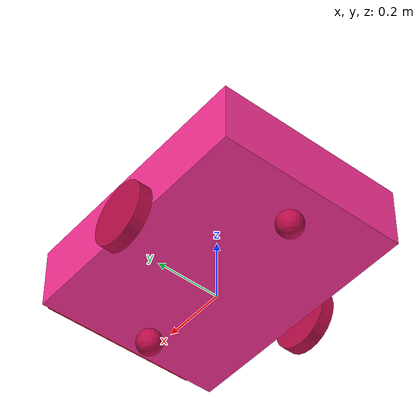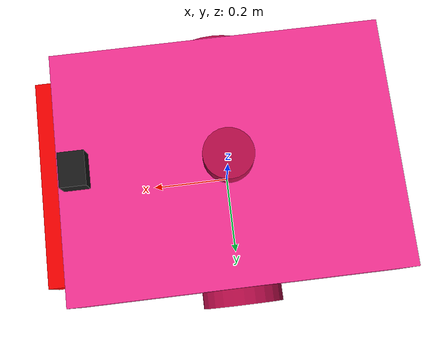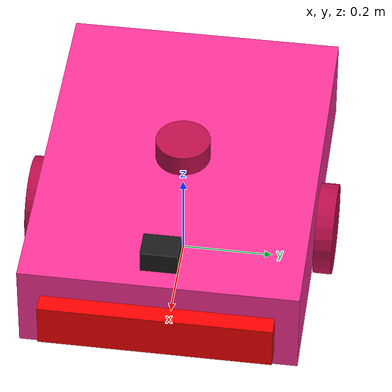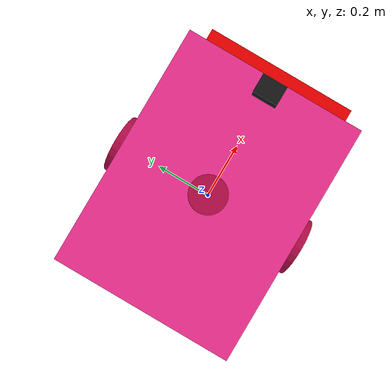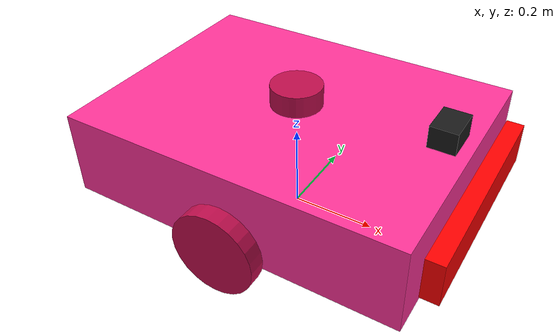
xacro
<?xml version="1.0"?>
<robot xmlns:xacro="http://www.ros.org/wiki/xacro" name="mobile_robot">

  <!-- IMU sensor definition -->
  <xacro:include filename="$(find robot_description)/urdf/imu.xacro"/>

  <!-- Camera sensor definition -->
  <xacro:include filename="$(find robot_description)/urdf/camera.xacro"/>

  <!-- Contact sensor definition -->
  <xacro:include filename="$(find robot_description)/urdf/contact_sensor.xacro"/>
  <xacro:include filename="$(find robot_description)/urdf/lidar.xacro"/>

  <!-- ==================== MATERIALS ==================== -->

  <material name="pink">
    <color rgba="1.0 0.2 0.6 1.0"/>
  </material>

  <material name="dark_pink">
    <color rgba="0.75 0.05 0.3 1.0"/>
  </material>

  <!-- ==================== BASE FOOTPRINT ==================== -->

  <link name="base_footprint"/>

  <!-- ==================== MAIN BODY ==================== -->

  <link name="base_link">

    <visual>
      <origin xyz="0 0 0" rpy="0 0 0"/>
      <geometry>
        <box size="0.80 0.60 0.20"/>
      </geometry>
      <material name="pink"/>
    </visual>

    <collision>
      <origin xyz="0 0 0" rpy="0 0 0"/>
      <geometry>
        <box size="0.80 0.60 0.20"/>
      </geometry>
    </collision>

    <inertial>
      <origin xyz="0 0 0" rpy="0 0 0"/>
      <mass value="5.0"/>
      <inertia
        ixx="0.1667"
        ixy="0.0"
        ixz="0.0"
        iyy="0.2833"
        iyz="0.0"
        izz="0.4167"/>
    </inertial>

  </link>

  <joint name="base_fixed_joint" type="fixed">
    <parent link="base_footprint"/>
    <child link="base_link"/>
    <origin xyz="0 0 0.18" rpy="0 0 0"/>
  </joint>

  <!-- ==================== LEFT WHEEL ==================== -->

  <link name="left_wheel_link">

    <visual>
      <origin xyz="0 0 0" rpy="1.5707963 0 0"/>
      <geometry>
        <cylinder radius="0.10" length="0.04"/>
      </geometry>
      <material name="dark_pink"/>
    </visual>

    <collision>
      <origin xyz="0 0 0" rpy="1.5707963 0 0"/>
      <geometry>
        <cylinder radius="0.10" length="0.04"/>
      </geometry>
    </collision>

    <inertial>
      <origin xyz="0 0 0" rpy="0 0 0"/>
      <mass value="0.3"/>
      <inertia
        ixx="0.0005"
        ixy="0.0"
        ixz="0.0"
        iyy="0.00096"
        iyz="0.0"
        izz="0.0005"/>
    </inertial>

  </link>

  <joint name="left_wheel_joint" type="continuous">
    <parent link="base_footprint"/>
    <child link="left_wheel_link"/>
    <origin xyz="0 0.32 0.10" rpy="0 0 0"/>
    <axis xyz="0 1 0"/>
  </joint>

  <!-- ==================== RIGHT WHEEL ==================== -->

  <link name="right_wheel_link">

    <visual>
      <origin xyz="0 0 0" rpy="1.5707963 0 0"/>
      <geometry>
        <cylinder radius="0.10" length="0.04"/>
      </geometry>
      <material name="dark_pink"/>
    </visual>

    <collision>
      <origin xyz="0 0 0" rpy="1.5707963 0 0"/>
      <geometry>
        <cylinder radius="0.10" length="0.04"/>
      </geometry>
    </collision>

    <inertial>
      <origin xyz="0 0 0" rpy="0 0 0"/>
      <mass value="0.3"/>
      <inertia
        ixx="0.0005"
        ixy="0.0"
        ixz="0.0"
        iyy="0.00096"
        iyz="0.0"
        izz="0.0005"/>
    </inertial>

  </link>

  <joint name="right_wheel_joint" type="continuous">
    <parent link="base_footprint"/>
    <child link="right_wheel_link"/>
    <origin xyz="0 -0.32 0.10" rpy="0 0 0"/>
    <axis xyz="0 1 0"/>
  </joint>

  <!-- ==================== REAR CASTER ==================== -->

  <link name="caster_link">

    <visual>
      <origin xyz="0 0 0" rpy="0 0 0"/>
      <geometry>
        <sphere radius="0.04"/>
      </geometry>
      <material name="dark_pink"/>
    </visual>

    <collision>
      <origin xyz="0 0 0" rpy="0 0 0"/>
      <geometry>
        <sphere radius="0.04"/>
      </geometry>
    </collision>

    <inertial>
      <origin xyz="0 0 0" rpy="0 0 0"/>
      <mass value="0.05"/>
      <inertia
        ixx="0.000018"
        ixy="0.0"
        ixz="0.0"
        iyy="0.000018"
        iyz="0.0"
        izz="0.000018"/>
    </inertial>

  </link>

  <joint name="caster_fixed_joint" type="fixed">
    <parent link="base_footprint"/>
    <child link="caster_link"/>
    <origin xyz="-0.30 0 0.04" rpy="0 0 0"/>
  </joint>

  <!-- ==================== FRONT CASTER ==================== -->

  <link name="front_caster_link">

    <visual>
      <origin xyz="0 0 0" rpy="0 0 0"/>
      <geometry>
        <sphere radius="0.04"/>
      </geometry>
      <material name="dark_pink"/>
    </visual>

    <collision>
      <origin xyz="0 0 0" rpy="0 0 0"/>
      <geometry>
        <sphere radius="0.04"/>
      </geometry>
    </collision>

    <inertial>
      <origin xyz="0 0 0" rpy="0 0 0"/>
      <mass value="0.05"/>
      <inertia
        ixx="0.000018"
        ixy="0.0"
        ixz="0.0"
        iyy="0.000018"
        iyz="0.0"
        izz="0.000018"/>
    </inertial>

  </link>

  <joint name="front_caster_fixed_joint" type="fixed">
    <parent link="base_footprint"/>
    <child link="front_caster_link"/>
    <origin xyz="0.30 0 0.04" rpy="0 0 0"/>
  </joint>

  <!-- 360 degree Gazebo LiDAR; scan frame is lidar_link. -->
  <xacro:lidar_sensor parent="base_link" name="lidar" topic="/scan"
                       x="0.0" y="0.0" z="0.12"/>

  <!-- ==================== GAZEBO MATERIALS ==================== -->

  <gazebo reference="base_link">
    <material>Gazebo/Pink</material>
  </gazebo>

  <gazebo reference="left_wheel_link">
    <material>Gazebo/DarkPink</material>
  </gazebo>

  <gazebo reference="right_wheel_link">
    <material>Gazebo/DarkPink</material>
  </gazebo>

  <gazebo reference="caster_link">
    <material>Gazebo/DarkPink</material>
  </gazebo>

  <gazebo reference="front_caster_link">
    <material>Gazebo/DarkPink</material>
  </gazebo>

  <!-- ==================== DIFFERENTIAL DRIVE ==================== -->

  <gazebo>
    <plugin
      filename="gz-sim-diff-drive-system"
      name="gz::sim::systems::DiffDrive">

      <left_joint>left_wheel_joint</left_joint>
      <right_joint>right_wheel_joint</right_joint>

      <wheel_separation>0.64</wheel_separation>
      <wheel_radius>0.10</wheel_radius>

      <topic>/cmd_vel</topic>
      <odom_topic>/odom</odom_topic>
      <odom_publish_frequency>20</odom_publish_frequency>
      <frame_id>odom</frame_id>
      <child_frame_id>base_footprint</child_frame_id>

      <max_linear_velocity>0.5</max_linear_velocity>
      <max_angular_velocity>1.0</max_angular_velocity>

    </plugin>
  </gazebo>

</robot>

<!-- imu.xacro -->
<robot xmlns:xacro="http://www.ros.org/wiki/xacro">

  <link name="imu_link">
    <visual>
      <geometry>
        <box size="0.03 0.03 0.03"/>
      </geometry>
      <material name="imu_gray">
        <color rgba="0.6 0.6 0.6 1"/>
      </material>
    </visual>
    <inertial>
      <mass value="0.01"/>
      <inertia ixx="0.00001" ixy="0" ixz="0"
               iyy="0.00001" iyz="0" izz="0.00001"/>
    </inertial>
  </link>

  <joint name="imu_fixed_joint" type="fixed">
    <parent link="base_link"/>
    <child link="imu_link"/>
    <origin xyz="0 0 0.06" rpy="0 0 0"/>
  </joint>

  <gazebo reference="imu_link">
    <sensor name="imu_sensor" type="imu">
      <always_on>true</always_on>
      <update_rate>50</update_rate>
      <visualize>true</visualize>
      <topic>/imu/data</topic>
      <gz_frame_id>imu_link</gz_frame_id>
    </sensor>
  </gazebo>

</robot>

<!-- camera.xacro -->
<robot xmlns:xacro="http://www.ros.org/wiki/xacro">

    <!-- CAMERA LINK -->
    <link name="camera_link">

        <visual>
            <geometry>
                <box size="0.06 0.08 0.05"/>
            </geometry>
            <material name="camera_black">
                <color rgba="0.1 0.1 0.1 1.0"/>
            </material>
        </visual>

        <collision>
            <geometry>
                <box size="0.06 0.08 0.05"/>
            </geometry>
        </collision>

        <inertial>
            <mass value="0.1"/>
            <inertia
                ixx="0.0001"
                ixy="0"
                ixz="0"
                iyy="0.0001"
                iyz="0"
                izz="0.0001"/>
        </inertial>

    </link>

    <!-- CAMERA JOINT -->
    <joint name="camera_fixed_joint" type="fixed">

        <parent link="base_link"/>
        <child link="camera_link"/>

        <origin xyz="0.35 0 0.15" rpy="0 0 0"/>

    </joint>

    <!-- GAZEBO CAMERA SENSOR -->
    <gazebo reference="camera_link">

        <sensor name="camera_sensor" type="camera">

            <always_on>true</always_on>
            <update_rate>30</update_rate>
            <visualize>true</visualize>

            <topic>/camera/image_raw</topic>
            <gz_frame_id>camera_link</gz_frame_id>

            <camera>
                <horizontal_fov>1.047</horizontal_fov>

                <image>
                    <width>640</width>
                    <height>480</height>
                    <format>R8G8B8</format>
                </image>

                <clip>
                    <near>0.1</near>
                    <far>100</far>
                </clip>
            </camera>

        </sensor>

    </gazebo>

</robot>

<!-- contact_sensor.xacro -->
<robot xmlns:xacro="http://www.ros.org/wiki/xacro">

    <!-- FRONT BUMPER LINK -->
    <link name="front_bumper_link">

        <visual name="front_bumper_visual">
            <geometry>
                <box size="0.04 0.50 0.10"/>
            </geometry>

            <material name="bumper_red">
                <color rgba="1.0 0.0 0.0 1.0"/>
            </material>
        </visual>

        <collision name="front_bumper_collision">
            <geometry>
                <box size="0.04 0.50 0.10"/>
            </geometry>
        </collision>

        <inertial>
            <mass value="0.1"/>

            <inertia
                ixx="0.0021"
                ixy="0.0"
                ixz="0.0"
                iyy="0.0001"
                iyz="0.0"
                izz="0.0021"/>
        </inertial>

    </link>

    <!-- BUMPER JOINT -->
    <joint name="front_bumper_joint" type="fixed">

        <parent link="base_link"/>
        <child link="front_bumper_link"/>

        <origin xyz="0.43 0 0" rpy="0 0 0"/>

    </joint>

    <!-- Prevent fixed joint lumping in Gazebo -->
    <gazebo reference="front_bumper_joint">
        <preserveFixedJoint>true</preserveFixedJoint>
    </gazebo>

    <!-- GAZEBO CONTACT SENSOR -->
    <gazebo reference="front_bumper_link">

        <sensor name="front_contact_sensor" type="contact">

            <always_on>true</always_on>

            <update_rate>50</update_rate>

            <topic>/contact</topic>

            <contact>
                <collision>front_bumper_link_fixed_joint_lump__front_bumper_collision_collision</collision>
            </contact>

        </sensor>

    </gazebo>

</robot>

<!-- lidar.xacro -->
<!-- Gazebo Sim GPU LiDAR mounted above the chassis. -->
<robot xmlns:xacro="http://www.ros.org/wiki/xacro">
  <xacro:macro name="lidar_sensor" params="parent name topic x:=0.0 y:=0.0 z:=0.12">
    <link name="${name}_link">
      <visual>
        <geometry><cylinder radius="0.06" length="0.06"/></geometry>
        <material name="dark_pink"/>
      </visual>
      <collision>
        <geometry><cylinder radius="0.06" length="0.06"/></geometry>
      </collision>
      <inertial>
        <mass value="0.1"/>
        <inertia ixx="0.0001" ixy="0" ixz="0"
                 iyy="0.0001" iyz="0" izz="0.0001"/>
      </inertial>
    </link>

    <joint name="${name}_fixed_joint" type="fixed">
      <parent link="${parent}"/>
      <child link="${name}_link"/>
      <origin xyz="${x} ${y} ${z}" rpy="0 0 0"/>
    </joint>

    <gazebo reference="${name}_link">
      <sensor name="${name}" type="gpu_lidar">
        <pose>0 0 0 0 0 0</pose>
        <topic>${topic}</topic>
        <update_rate>10</update_rate>
        <always_on>true</always_on>
        <visualize>true</visualize>
        <gz_frame_id>${name}_link</gz_frame_id>
        <ray>
          <scan>
            <horizontal>
              <samples>360</samples>
              <resolution>1</resolution>
              <min_angle>-3.14159265</min_angle>
              <max_angle>3.14159265</max_angle>
            </horizontal>
          </scan>
          <range>
            <min>0.12</min>
            <max>8.0</max>
            <resolution>0.01</resolution>
          </range>
        </ray>
      </sensor>
    </gazebo>
  </xacro:macro>
</robot>
